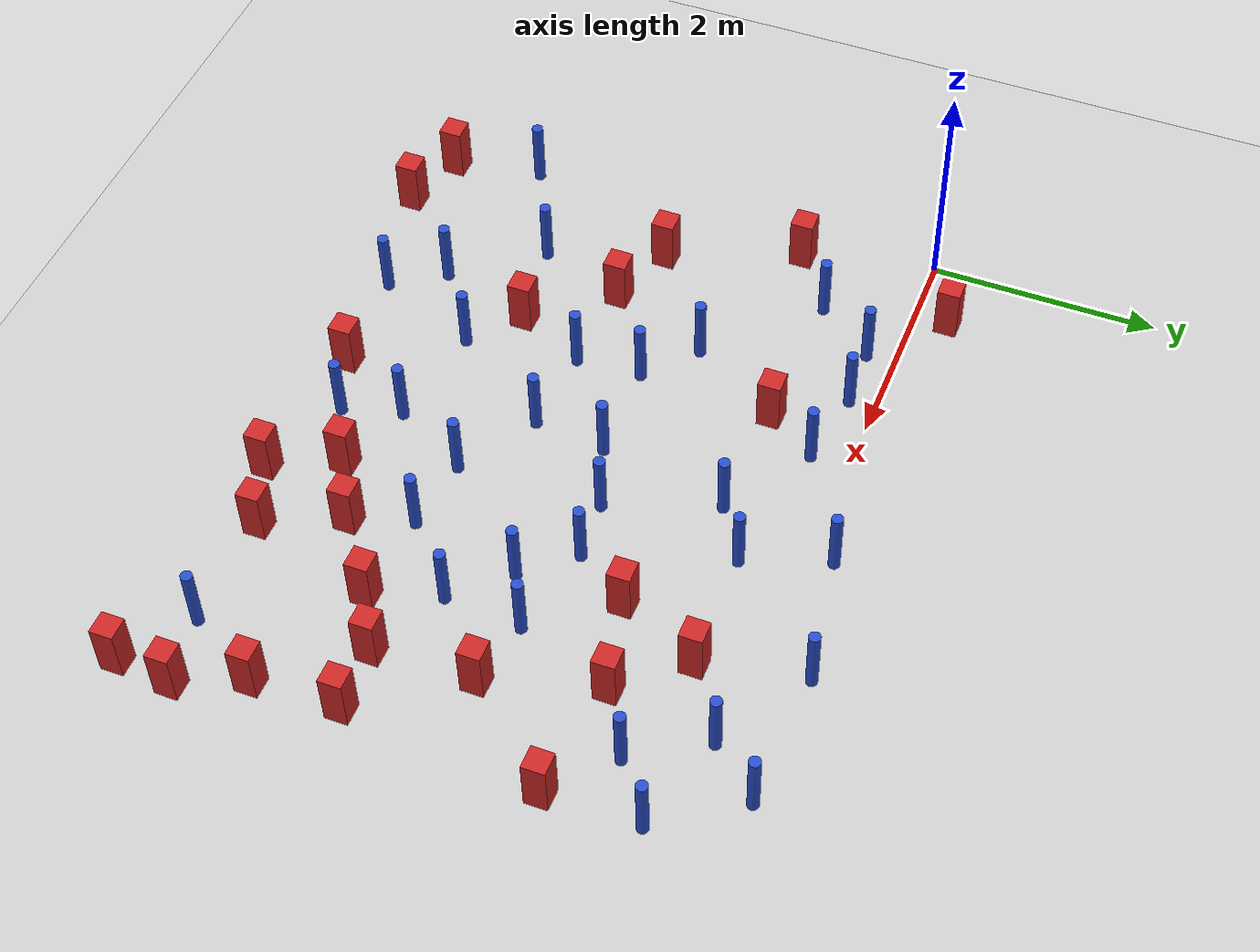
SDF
<sdf version="1.6">
 <world name="default">
  <model name="ground_plane">
   <static>1</static>
   <link name="link">
    <collision name="collision">
     <geometry><plane><normal>0 0 1</normal><size>100 100</size></plane></geometry>
     <surface><friction><ode><mu>100</mu><mu2>50</mu2></ode></friction></surface>
    </collision>
    <visual name="visual">
     <cast_shadows>0</cast_shadows>
     <geometry><plane><normal>0 0 1</normal><size>100 100</size></plane></geometry>
     <material>
      <ambient>1.0 1.0 1.0 1.0</ambient>
      <diffuse>0.8 0.8 0.8 1.0</diffuse>
      <specular>0.01 0.01 0.01 1.000000</specular>
     </material>
    </visual>
   </link>
  </model>
  <model name="square_post_obstacle2">
   <static>true</static>
   <pose>1.87712716383 -3.18212368391 1.91545236811e-07 -7.35059704564e-06 1.12565212e-07 2.39332434364e-05</pose>
   <link name="link">
    <pose>0 0 0.25 0 -0 0</pose>
    <inertial>
     <mass>100</mass>
     <inertia>
      <ixx>0.166667</ixx>
      <ixy>0</ixy>
      <ixz>0</ixz>
      <iyy>0.166667</iyy>
      <iyz>0</iyz>
      <izz>0.166667</izz>
     </inertia>
    </inertial>
    <collision name="collision"><geometry><box><size>.2 .2 .5</size></box></geometry></collision>
    <visual name="visual">
     <geometry><box><size>.2 .2 .5</size></box></geometry>
     <material>
      <script><name>Gazebo/Red</name><uri>file://media/materials/scripts/gazebo.material</uri></script>
     </material>
    </visual>
   </link>
  </model>
  <model name="square_post_obstacle13">
   <static>true</static>
   <pose>0.290490334765 -1.14874622787 1.91545236811e-07 -7.35059704564e-06 1.12565212e-07 2.39332434364e-05</pose>
   <link name="link">
    <pose>0 0 0.25 0 -0 0</pose>
    <inertial>
     <mass>100</mass>
     <inertia>
      <ixx>0.166667</ixx>
      <ixy>0</ixy>
      <ixz>0</ixz>
      <iyy>0.166667</iyy>
      <iyz>0</iyz>
      <izz>0.166667</izz>
     </inertia>
    </inertial>
    <collision name="collision"><geometry><box><size>.2 .2 .5</size></box></geometry></collision>
    <visual name="visual">
     <geometry><box><size>.2 .2 .5</size></box></geometry>
     <material>
      <script><name>Gazebo/Red</name><uri>file://media/materials/scripts/gazebo.material</uri></script>
     </material>
    </visual>
   </link>
  </model>
  <model name="square_post_obstacle22">
   <static>true</static>
   <pose>2.86994358038 -4.40634051251 1.91545236811e-07 -7.35059704564e-06 1.12565212e-07 2.39332434364e-05</pose>
   <link name="link">
    <pose>0 0 0.25 0 -0 0</pose>
    <inertial>
     <mass>100</mass>
     <inertia>
      <ixx>0.166667</ixx>
      <ixy>0</ixy>
      <ixz>0</ixz>
      <iyy>0.166667</iyy>
      <iyz>0</iyz>
      <izz>0.166667</izz>
     </inertia>
    </inertial>
    <collision name="collision"><geometry><box><size>.2 .2 .5</size></box></geometry></collision>
    <visual name="visual">
     <geometry><box><size>.2 .2 .5</size></box></geometry>
     <material>
      <script><name>Gazebo/Red</name><uri>file://media/materials/scripts/gazebo.material</uri></script>
     </material>
    </visual>
   </link>
  </model>
  <model name="square_post_obstacle28">
   <static>true</static>
   <pose>4.43367422833 -1.22863578563 1.91545236811e-07 -7.35059704564e-06 1.12565212e-07 2.39332434364e-05</pose>
   <link name="link">
    <pose>0 0 0.25 0 -0 0</pose>
    <inertial>
     <mass>100</mass>
     <inertia>
      <ixx>0.166667</ixx>
      <ixy>0</ixy>
      <ixz>0</ixz>
      <iyy>0.166667</iyy>
      <iyz>0</iyz>
      <izz>0.166667</izz>
     </inertia>
    </inertial>
    <collision name="collision"><geometry><box><size>.2 .2 .5</size></box></geometry></collision>
    <visual name="visual">
     <geometry><box><size>.2 .2 .5</size></box></geometry>
     <material>
      <script><name>Gazebo/Red</name><uri>file://media/materials/scripts/gazebo.material</uri></script>
     </material>
    </visual>
   </link>
  </model>
  <model name="square_post_obstacle29">
   <static>true</static>
   <pose>6.26811032753 -1.15741085906 1.91545236811e-07 -7.35059704564e-06 1.12565212e-07 2.39332434364e-05</pose>
   <link name="link">
    <pose>0 0 0.25 0 -0 0</pose>
    <inertial>
     <mass>100</mass>
     <inertia>
      <ixx>0.166667</ixx>
      <ixy>0</ixy>
      <ixz>0</ixz>
      <iyy>0.166667</iyy>
      <iyz>0</iyz>
      <izz>0.166667</izz>
     </inertia>
    </inertial>
    <collision name="collision"><geometry><box><size>.2 .2 .5</size></box></geometry></collision>
    <visual name="visual">
     <geometry><box><size>.2 .2 .5</size></box></geometry>
     <material>
      <script><name>Gazebo/Red</name><uri>file://media/materials/scripts/gazebo.material</uri></script>
     </material>
    </visual>
   </link>
  </model>
  <model name="pole_obstacle29">
   <static>true</static>
   <pose>3.70226372074 -0.526272472891 7.38925637345e-09 -8.471706928e-08 1.24976765186e-08 -1.74513093012e-07</pose>
   <link name="link">
    <pose>0 0 0.3 0 -0 0</pose>
    <inertial>
     <mass>1</mass>
     <inertia><ixx>0.145833</ixx><ixy>0</ixy><ixz>0</ixz><iyy>0.145833</iyy><iyz>0</iyz><izz>0.125</izz></inertia>
    </inertial>
    <collision name="collision">
     <geometry><cylinder><radius>0.05</radius><length>.6</length></cylinder></geometry>
    </collision>
    <visual name="visual">
     <geometry><cylinder><radius>0.05</radius><length>.6</length></cylinder></geometry>
     <material>
      <script><name>Gazebo/Blue</name><uri>file://media/materials/scripts/gazebo.material</uri></script>
     </material>
    </visual>
   </link>
  </model>
  <model name="square_post_obstacle35">
   <static>true</static>
   <pose>6.12166422069 -2.87649692162 1.91545236811e-07 -7.35059704564e-06 1.12565212e-07 2.39332434364e-05</pose>
   <link name="link">
    <pose>0 0 0.25 0 -0 0</pose>
    <inertial>
     <mass>100</mass>
     <inertia>
      <ixx>0.166667</ixx>
      <ixy>0</ixy>
      <ixz>0</ixz>
      <iyy>0.166667</iyy>
      <iyz>0</iyz>
      <izz>0.166667</izz>
     </inertia>
    </inertial>
    <collision name="collision"><geometry><box><size>.2 .2 .5</size></box></geometry></collision>
    <visual name="visual">
     <geometry><box><size>.2 .2 .5</size></box></geometry>
     <material>
      <script><name>Gazebo/Red</name><uri>file://media/materials/scripts/gazebo.material</uri></script>
     </material>
    </visual>
   </link>
  </model>
  <model name="pole_obstacle34">
   <static>true</static>
   <pose>2.29608272024 -3.55717359873 7.38925637345e-09 -8.47170692798e-08 1.24976764939e-08 -1.74513093025e-07</pose>
   <link name="link">
    <pose>0 0 0.3 0 -0 0</pose>
    <inertial>
     <mass>1</mass>
     <inertia><ixx>0.145833</ixx><ixy>0</ixy><ixz>0</ixz><iyy>0.145833</iyy><iyz>0</iyz><izz>0.125</izz></inertia>
    </inertial>
    <collision name="collision">
     <geometry><cylinder><radius>0.05</radius><length>.6</length></cylinder></geometry>
    </collision>
    <visual name="visual">
     <geometry><cylinder><radius>0.05</radius><length>.6</length></cylinder></geometry>
     <material>
      <script><name>Gazebo/Blue</name><uri>file://media/materials/scripts/gazebo.material</uri></script>
     </material>
    </visual>
   </link>
  </model>
  <model name="square_post_obstacle37">
   <static>true</static>
   <pose>5.55675360045 -2.89490780846 1.91545236811e-07 -7.35059704564e-06 1.12565212e-07 2.39332434364e-05</pose>
   <link name="link">
    <pose>0 0 0.25 0 -0 0</pose>
    <inertial>
     <mass>100</mass>
     <inertia>
      <ixx>0.166667</ixx>
      <ixy>0</ixy>
      <ixz>0</ixz>
      <iyy>0.166667</iyy>
      <iyz>0</iyz>
      <izz>0.166667</izz>
     </inertia>
    </inertial>
    <collision name="collision"><geometry><box><size>.2 .2 .5</size></box></geometry></collision>
    <visual name="visual">
     <geometry><box><size>.2 .2 .5</size></box></geometry>
     <material>
      <script><name>Gazebo/Red</name><uri>file://media/materials/scripts/gazebo.material</uri></script>
     </material>
    </visual>
   </link>
  </model>
  <model name="pole_obstacle42">
   <static>true</static>
   <pose>4.57937662705 0.396037014761 7.38925637345e-09 -8.47170692798e-08 1.24976765003e-08 -1.7451309302e-07</pose>
   <link name="link">
    <pose>0 0 0.3 0 -0 0</pose>
    <inertial>
     <mass>1</mass>
     <inertia><ixx>0.145833</ixx><ixy>0</ixy><ixz>0</ixz><iyy>0.145833</iyy><iyz>0</iyz><izz>0.125</izz></inertia>
    </inertial>
    <collision name="collision">
     <geometry><cylinder><radius>0.05</radius><length>.6</length></cylinder></geometry>
    </collision>
    <visual name="visual">
     <geometry><cylinder><radius>0.05</radius><length>.6</length></cylinder></geometry>
     <material>
      <script><name>Gazebo/Blue</name><uri>file://media/materials/scripts/gazebo.material</uri></script>
     </material>
    </visual>
   </link>
  </model>
  <model name="square_post_obstacle46">
   <static>true</static>
   <pose>4.75599143377 -4.29013870472 1.91545236811e-07 -7.35059704564e-06 1.12565212e-07 2.39332434364e-05</pose>
   <link name="link">
    <pose>0 0 0.25 0 -0 0</pose>
    <inertial>
     <mass>100</mass>
     <inertia>
      <ixx>0.166667</ixx>
      <ixy>0</ixy>
      <ixz>0</ixz>
      <iyy>0.166667</iyy>
      <iyz>0</iyz>
      <izz>0.166667</izz>
     </inertia>
    </inertial>
    <collision name="collision"><geometry><box><size>.2 .2 .5</size></box></geometry></collision>
    <visual name="visual">
     <geometry><box><size>.2 .2 .5</size></box></geometry>
     <material>
      <script><name>Gazebo/Red</name><uri>file://media/materials/scripts/gazebo.material</uri></script>
     </material>
    </visual>
   </link>
  </model>
  <model name="square_post_obstacle47">
   <static>true</static>
   <pose>3.91105022048 -3.93036973854 1.91545236811e-07 -7.35059704564e-06 1.12565212e-07 2.39332434364e-05</pose>
   <link name="link">
    <pose>0 0 0.25 0 -0 0</pose>
    <inertial>
     <mass>100</mass>
     <inertia>
      <ixx>0.166667</ixx>
      <ixy>0</ixy>
      <ixz>0</ixz>
      <iyy>0.166667</iyy>
      <iyz>0</iyz>
      <izz>0.166667</izz>
     </inertia>
    </inertial>
    <collision name="collision"><geometry><box><size>.2 .2 .5</size></box></geometry></collision>
    <visual name="visual">
     <geometry><box><size>.2 .2 .5</size></box></geometry>
     <material>
      <script><name>Gazebo/Red</name><uri>file://media/materials/scripts/gazebo.material</uri></script>
     </material>
    </visual>
   </link>
  </model>
  <model name="square_post_obstacle52">
   <static>true</static>
   <pose>0.625016838886 0.302436165208 1.91545236811e-07 -7.35059704564e-06 1.12565212e-07 2.39332434364e-05</pose>
   <link name="link">
    <pose>0 0 0.25 0 -0 0</pose>
    <inertial>
     <mass>100</mass>
     <inertia>
      <ixx>0.166667</ixx>
      <ixy>0</ixy>
      <ixz>0</ixz>
      <iyy>0.166667</iyy>
      <iyz>0</iyz>
      <izz>0.166667</izz>
     </inertia>
    </inertial>
    <collision name="collision"><geometry><box><size>.2 .2 .5</size></box></geometry></collision>
    <visual name="visual">
     <geometry><box><size>.2 .2 .5</size></box></geometry>
     <material>
      <script><name>Gazebo/Red</name><uri>file://media/materials/scripts/gazebo.material</uri></script>
     </material>
    </visual>
   </link>
  </model>
  <model name="square_post_obstacle54">
   <static>true</static>
   <pose>0.304550579448 -4.54418312498 1.91545236811e-07 -7.35059704564e-06 1.12565212e-07 2.39332434364e-05</pose>
   <link name="link">
    <pose>0 0 0.25 0 -0 0</pose>
    <inertial>
     <mass>100</mass>
     <inertia>
      <ixx>0.166667</ixx>
      <ixy>0</ixy>
      <ixz>0</ixz>
      <iyy>0.166667</iyy>
      <iyz>0</iyz>
      <izz>0.166667</izz>
     </inertia>
    </inertial>
    <collision name="collision"><geometry><box><size>.2 .2 .5</size></box></geometry></collision>
    <visual name="visual">
     <geometry><box><size>.2 .2 .5</size></box></geometry>
     <material>
      <script><name>Gazebo/Red</name><uri>file://media/materials/scripts/gazebo.material</uri></script>
     </material>
    </visual>
   </link>
  </model>
  <model name="pole_obstacle52">
   <static>true</static>
   <pose>1.92592263303 -4.47850037943 7.38925637345e-09 -8.47170692799e-08 1.24976765033e-08 -1.74513093018e-07</pose>
   <link name="link">
    <pose>0 0 0.3 0 -0 0</pose>
    <inertial>
     <mass>1</mass>
     <inertia><ixx>0.145833</ixx><ixy>0</ixy><ixz>0</ixz><iyy>0.145833</iyy><iyz>0</iyz><izz>0.125</izz></inertia>
    </inertial>
    <collision name="collision">
     <geometry><cylinder><radius>0.05</radius><length>.6</length></cylinder></geometry>
    </collision>
    <visual name="visual">
     <geometry><cylinder><radius>0.05</radius><length>.6</length></cylinder></geometry>
     <material>
      <script><name>Gazebo/Blue</name><uri>file://media/materials/scripts/gazebo.material</uri></script>
     </material>
    </visual>
   </link>
  </model>
  <model name="square_post_obstacle57">
   <static>true</static>
   <pose>0.732037611838 -2.29606073342 1.91545236811e-07 -7.35059704564e-06 1.12565212e-07 2.39332434364e-05</pose>
   <link name="link">
    <pose>0 0 0.25 0 -0 0</pose>
    <inertial>
     <mass>100</mass>
     <inertia>
      <ixx>0.166667</ixx>
      <ixy>0</ixy>
      <ixz>0</ixz>
      <iyy>0.166667</iyy>
      <iyz>0</iyz>
      <izz>0.166667</izz>
     </inertia>
    </inertial>
    <collision name="collision"><geometry><box><size>.2 .2 .5</size></box></geometry></collision>
    <visual name="visual">
     <geometry><box><size>.2 .2 .5</size></box></geometry>
     <material>
      <script><name>Gazebo/Red</name><uri>file://media/materials/scripts/gazebo.material</uri></script>
     </material>
    </visual>
   </link>
  </model>
  <model name="pole_obstacle56">
   <static>true</static>
   <pose>2.9387800708 -2.61939094975 7.38925637345e-09 -8.47170692798e-08 1.24976764939e-08 -1.74513093025e-07</pose>
   <link name="link">
    <pose>0 0 0.3 0 -0 0</pose>
    <inertial>
     <mass>1</mass>
     <inertia><ixx>0.145833</ixx><ixy>0</ixy><ixz>0</ixz><iyy>0.145833</iyy><iyz>0</iyz><izz>0.125</izz></inertia>
    </inertial>
    <collision name="collision">
     <geometry><cylinder><radius>0.05</radius><length>.6</length></cylinder></geometry>
    </collision>
    <visual name="visual">
     <geometry><cylinder><radius>0.05</radius><length>.6</length></cylinder></geometry>
     <material>
      <script><name>Gazebo/Blue</name><uri>file://media/materials/scripts/gazebo.material</uri></script>
     </material>
    </visual>
   </link>
  </model>
  <model name="pole_obstacle60">
   <static>true</static>
   <pose>5.76372513387 -4.30937177448 7.38925637345e-09 -8.47170692796e-08 1.24976764786e-08 -1.74513093032e-07</pose>
   <link name="link">
    <pose>0 0 0.3 0 -0 0</pose>
    <inertial>
     <mass>1</mass>
     <inertia><ixx>0.145833</ixx><ixy>0</ixy><ixz>0</ixz><iyy>0.145833</iyy><iyz>0</iyz><izz>0.125</izz></inertia>
    </inertial>
    <collision name="collision">
     <geometry><cylinder><radius>0.05</radius><length>.6</length></cylinder></geometry>
    </collision>
    <visual name="visual">
     <geometry><cylinder><radius>0.05</radius><length>.6</length></cylinder></geometry>
     <material>
      <script><name>Gazebo/Blue</name><uri>file://media/materials/scripts/gazebo.material</uri></script>
     </material>
    </visual>
   </link>
  </model>
  <model name="pole_obstacle66">
   <static>true</static>
   <pose>6.25325592122 -0.34724285604 7.38925637345e-09 -8.47170692798e-08 1.24976765003e-08 -1.7451309302e-07</pose>
   <link name="link">
    <pose>0 0 0.3 0 -0 0</pose>
    <inertial>
     <mass>1</mass>
     <inertia><ixx>0.145833</ixx><ixy>0</ixy><ixz>0</ixz><iyy>0.145833</iyy><iyz>0</iyz><izz>0.125</izz></inertia>
    </inertial>
    <collision name="collision">
     <geometry><cylinder><radius>0.05</radius><length>.6</length></cylinder></geometry>
    </collision>
    <visual name="visual">
     <geometry><cylinder><radius>0.05</radius><length>.6</length></cylinder></geometry>
     <material>
      <script><name>Gazebo/Blue</name><uri>file://media/materials/scripts/gazebo.material</uri></script>
     </material>
    </visual>
   </link>
  </model>
  <model name="pole_obstacle69">
   <static>true</static>
   <pose>0.831735934486 -0.770391821955 7.38925637345e-09 -8.47170692799e-08 1.24976765008e-08 -1.7451309302e-07</pose>
   <link name="link">
    <pose>0 0 0.3 0 -0 0</pose>
    <inertial>
     <mass>1</mass>
     <inertia><ixx>0.145833</ixx><ixy>0</ixy><ixz>0</ixz><iyy>0.145833</iyy><iyz>0</iyz><izz>0.125</izz></inertia>
    </inertial>
    <collision name="collision">
     <geometry><cylinder><radius>0.05</radius><length>.6</length></cylinder></geometry>
    </collision>
    <visual name="visual">
     <geometry><cylinder><radius>0.05</radius><length>.6</length></cylinder></geometry>
     <material>
      <script><name>Gazebo/Blue</name><uri>file://media/materials/scripts/gazebo.material</uri></script>
     </material>
    </visual>
   </link>
  </model>
  <model name="pole_obstacle77">
   <static>true</static>
   <pose>4.87543184126 -2.57974493593 7.38925637345e-09 -8.47170692798e-08 1.24976764937e-08 -1.74513093023e-07</pose>
   <link name="link">
    <pose>0 0 0.3 0 -0 0</pose>
    <inertial>
     <mass>1</mass>
     <inertia><ixx>0.145833</ixx><ixy>0</ixy><ixz>0</ixz><iyy>0.145833</iyy><iyz>0</iyz><izz>0.125</izz></inertia>
    </inertial>
    <collision name="collision">
     <geometry><cylinder><radius>0.05</radius><length>.6</length></cylinder></geometry>
    </collision>
    <visual name="visual">
     <geometry><cylinder><radius>0.05</radius><length>.6</length></cylinder></geometry>
     <material>
      <script><name>Gazebo/Blue</name><uri>file://media/materials/scripts/gazebo.material</uri></script>
     </material>
    </visual>
   </link>
  </model>
  <model name="square_post_obstacle79">
   <static>true</static>
   <pose>6.38502125943 -4.20020715803 1.91545236811e-07 -7.35059704564e-06 1.12565212e-07 2.39332434364e-05</pose>
   <link name="link">
    <pose>0 0 0.25 0 -0 0</pose>
    <inertial>
     <mass>100</mass>
     <inertia>
      <ixx>0.166667</ixx>
      <ixy>0</ixy>
      <ixz>0</ixz>
      <iyy>0.166667</iyy>
      <iyz>0</iyz>
      <izz>0.166667</izz>
     </inertia>
    </inertial>
    <collision name="collision"><geometry><box><size>.2 .2 .5</size></box></geometry></collision>
    <visual name="visual">
     <geometry><box><size>.2 .2 .5</size></box></geometry>
     <material>
      <script><name>Gazebo/Red</name><uri>file://media/materials/scripts/gazebo.material</uri></script>
     </material>
    </visual>
   </link>
  </model>
  <model name="pole_obstacle81">
   <static>true</static>
   <pose>5.38440537211 -0.0988801034989 7.38925637345e-09 -8.47170692799e-08 1.24976765039e-08 -1.74513093019e-07</pose>
   <link name="link">
    <pose>0 0 0.3 0 -0 0</pose>
    <inertial>
     <mass>1</mass>
     <inertia><ixx>0.145833</ixx><ixy>0</ixy><ixz>0</ixz><iyy>0.145833</iyy><iyz>0</iyz><izz>0.125</izz></inertia>
    </inertial>
    <collision name="collision">
     <geometry><cylinder><radius>0.05</radius><length>.6</length></cylinder></geometry>
    </collision>
    <visual name="visual">
     <geometry><cylinder><radius>0.05</radius><length>.6</length></cylinder></geometry>
     <material>
      <script><name>Gazebo/Blue</name><uri>file://media/materials/scripts/gazebo.material</uri></script>
     </material>
    </visual>
   </link>
  </model>
  <model name="square_post_obstacle81">
   <static>true</static>
   <pose>5.52212290222 -2.01168719149 1.91545236811e-07 -7.35059704564e-06 1.12565212e-07 2.39332434364e-05</pose>
   <link name="link">
    <pose>0 0 0.25 0 -0 0</pose>
    <inertial>
     <mass>100</mass>
     <inertia>
      <ixx>0.166667</ixx>
      <ixy>0</ixy>
      <ixz>0</ixz>
      <iyy>0.166667</iyy>
      <iyz>0</iyz>
      <izz>0.166667</izz>
     </inertia>
    </inertial>
    <collision name="collision"><geometry><box><size>.2 .2 .5</size></box></geometry></collision>
    <visual name="visual">
     <geometry><box><size>.2 .2 .5</size></box></geometry>
     <material>
      <script><name>Gazebo/Red</name><uri>file://media/materials/scripts/gazebo.material</uri></script>
     </material>
    </visual>
   </link>
  </model>
  <model name="pole_obstacle88">
   <static>true</static>
   <pose>3.25016630791 -3.71055194684 7.38925637345e-09 -8.47170692798e-08 1.24976764939e-08 -1.74513093025e-07</pose>
   <link name="link">
    <pose>0 0 0.3 0 -0 0</pose>
    <inertial>
     <mass>1</mass>
     <inertia><ixx>0.145833</ixx><ixy>0</ixy><ixz>0</ixz><iyy>0.145833</iyy><iyz>0</iyz><izz>0.125</izz></inertia>
    </inertial>
    <collision name="collision">
     <geometry><cylinder><radius>0.05</radius><length>.6</length></cylinder></geometry>
    </collision>
    <visual name="visual">
     <geometry><cylinder><radius>0.05</radius><length>.6</length></cylinder></geometry>
     <material>
      <script><name>Gazebo/Blue</name><uri>file://media/materials/scripts/gazebo.material</uri></script>
     </material>
    </visual>
   </link>
  </model>
  <model name="pole_obstacle90">
   <static>true</static>
   <pose>3.01265767654 -1.9756026013 7.38925637345e-09 -8.471706928e-08 1.249767651e-08 -1.74513093015e-07</pose>
   <link name="link">
    <pose>0 0 0.3 0 -0 0</pose>
    <inertial>
     <mass>1</mass>
     <inertia><ixx>0.145833</ixx><ixy>0</ixy><ixz>0</ixz><iyy>0.145833</iyy><iyz>0</iyz><izz>0.125</izz></inertia>
    </inertial>
    <collision name="collision">
     <geometry><cylinder><radius>0.05</radius><length>.6</length></cylinder></geometry>
    </collision>
    <visual name="visual">
     <geometry><cylinder><radius>0.05</radius><length>.6</length></cylinder></geometry>
     <material>
      <script><name>Gazebo/Blue</name><uri>file://media/materials/scripts/gazebo.material</uri></script>
     </material>
    </visual>
   </link>
  </model>
  <model name="pole_obstacle93">
   <static>true</static>
   <pose>3.22915781412 -0.827715417031 7.38925637345e-09 -8.471706928e-08 1.24976765177e-08 -1.74513093012e-07</pose>
   <link name="link">
    <pose>0 0 0.3 0 -0 0</pose>
    <inertial>
     <mass>1</mass>
     <inertia><ixx>0.145833</ixx><ixy>0</ixy><ixz>0</ixz><iyy>0.145833</iyy><iyz>0</iyz><izz>0.125</izz></inertia>
    </inertial>
    <collision name="collision">
     <geometry><cylinder><radius>0.05</radius><length>.6</length></cylinder></geometry>
    </collision>
    <visual name="visual">
     <geometry><cylinder><radius>0.05</radius><length>.6</length></cylinder></geometry>
     <material>
      <script><name>Gazebo/Blue</name><uri>file://media/materials/scripts/gazebo.material</uri></script>
     </material>
    </visual>
   </link>
  </model>
  <model name="pole_obstacle101">
   <static>true</static>
   <pose>2.4618221212 -0.334692349725 7.38925637345e-09 -8.471706928e-08 1.24976765172e-08 -1.74513093013e-07</pose>
   <link name="link">
    <pose>0 0 0.3 0 -0 0</pose>
    <inertial>
     <mass>1</mass>
     <inertia><ixx>0.145833</ixx><ixy>0</ixy><ixz>0</ixz><iyy>0.145833</iyy><iyz>0</iyz><izz>0.125</izz></inertia>
    </inertial>
    <collision name="collision">
     <geometry><cylinder><radius>0.05</radius><length>.6</length></cylinder></geometry>
    </collision>
    <visual name="visual">
     <geometry><cylinder><radius>0.05</radius><length>.6</length></cylinder></geometry>
     <material>
      <script><name>Gazebo/Blue</name><uri>file://media/materials/scripts/gazebo.material</uri></script>
     </material>
    </visual>
   </link>
  </model>
  <model name="pole_obstacle109">
   <static>true</static>
   <pose>2.16136557472 -2.56848561285 7.38925637345e-09 -8.47170692798e-08 1.24976764939e-08 -1.74513093025e-07</pose>
   <link name="link">
    <pose>0 0 0.3 0 -0 0</pose>
    <inertial>
     <mass>1</mass>
     <inertia><ixx>0.145833</ixx><ixy>0</ixy><ixz>0</ixz><iyy>0.145833</iyy><iyz>0</iyz><izz>0.125</izz></inertia>
    </inertial>
    <collision name="collision">
     <geometry><cylinder><radius>0.05</radius><length>.6</length></cylinder></geometry>
    </collision>
    <visual name="visual">
     <geometry><cylinder><radius>0.05</radius><length>.6</length></cylinder></geometry>
     <material>
      <script><name>Gazebo/Blue</name><uri>file://media/materials/scripts/gazebo.material</uri></script>
     </material>
    </visual>
   </link>
  </model>
  <model name="square_post_obstacle110">
   <static>true</static>
   <pose>5.07274384306 -3.17413740049 1.91545236811e-07 -7.35059704564e-06 1.12565212e-07 2.39332434364e-05</pose>
   <link name="link">
    <pose>0 0 0.25 0 -0 0</pose>
    <inertial>
     <mass>100</mass>
     <inertia>
      <ixx>0.166667</ixx>
      <ixy>0</ixy>
      <ixz>0</ixz>
      <iyy>0.166667</iyy>
      <iyz>0</iyz>
      <izz>0.166667</izz>
     </inertia>
    </inertial>
    <collision name="collision"><geometry><box><size>.2 .2 .5</size></box></geometry></collision>
    <visual name="visual">
     <geometry><box><size>.2 .2 .5</size></box></geometry>
     <material>
      <script><name>Gazebo/Red</name><uri>file://media/materials/scripts/gazebo.material</uri></script>
     </material>
    </visual>
   </link>
  </model>
  <model name="square_post_obstacle111">
   <static>true</static>
   <pose>4.76953723247 -0.500163490495 1.91545236811e-07 -7.35059704564e-06 1.12565212e-07 2.39332434364e-05</pose>
   <link name="link">
    <pose>0 0 0.25 0 -0 0</pose>
    <inertial>
     <mass>100</mass>
     <inertia>
      <ixx>0.166667</ixx>
      <ixy>0</ixy>
      <ixz>0</ixz>
      <iyy>0.166667</iyy>
      <iyz>0</iyz>
      <izz>0.166667</izz>
     </inertia>
    </inertial>
    <collision name="collision"><geometry><box><size>.2 .2 .5</size></box></geometry></collision>
    <visual name="visual">
     <geometry><box><size>.2 .2 .5</size></box></geometry>
     <material>
      <script><name>Gazebo/Red</name><uri>file://media/materials/scripts/gazebo.material</uri></script>
     </material>
    </visual>
   </link>
  </model>
  <model name="pole_obstacle122">
   <static>true</static>
   <pose>5.76492341704 -0.714240533339 7.38925637345e-09 -8.47170692799e-08 1.24976765038e-08 -1.74513093018e-07</pose>
   <link name="link">
    <pose>0 0 0.3 0 -0 0</pose>
    <inertial>
     <mass>1</mass>
     <inertia><ixx>0.145833</ixx><ixy>0</ixy><ixz>0</ixz><iyy>0.145833</iyy><iyz>0</iyz><izz>0.125</izz></inertia>
    </inertial>
    <collision name="collision">
     <geometry><cylinder><radius>0.05</radius><length>.6</length></cylinder></geometry>
    </collision>
    <visual name="visual">
     <geometry><cylinder><radius>0.05</radius><length>.6</length></cylinder></geometry>
     <material>
      <script><name>Gazebo/Blue</name><uri>file://media/materials/scripts/gazebo.material</uri></script>
     </material>
    </visual>
   </link>
  </model>
  <model name="pole_obstacle124">
   <static>true</static>
   <pose>4.10232915058 -1.72885497547 7.38925637345e-09 -8.471706928e-08 1.24976765134e-08 -1.74513093015e-07</pose>
   <link name="link">
    <pose>0 0 0.3 0 -0 0</pose>
    <inertial>
     <mass>1</mass>
     <inertia><ixx>0.145833</ixx><ixy>0</ixy><ixz>0</ixz><iyy>0.145833</iyy><iyz>0</iyz><izz>0.125</izz></inertia>
    </inertial>
    <collision name="collision">
     <geometry><cylinder><radius>0.05</radius><length>.6</length></cylinder></geometry>
    </collision>
    <visual name="visual">
     <geometry><cylinder><radius>0.05</radius><length>.6</length></cylinder></geometry>
     <material>
      <script><name>Gazebo/Blue</name><uri>file://media/materials/scripts/gazebo.material</uri></script>
     </material>
    </visual>
   </link>
  </model>
  <model name="pole_obstacle127">
   <static>true</static>
   <pose>0.149685162404 -3.77438365638 7.38925637345e-09 -8.47170692792e-08 1.24976764391e-08 -1.74513093041e-07</pose>
   <link name="link">
    <pose>0 0 0.3 0 -0 0</pose>
    <inertial>
     <mass>1</mass>
     <inertia><ixx>0.145833</ixx><ixy>0</ixy><ixz>0</ixz><iyy>0.145833</iyy><iyz>0</iyz><izz>0.125</izz></inertia>
    </inertial>
    <collision name="collision">
     <geometry><cylinder><radius>0.05</radius><length>.6</length></cylinder></geometry>
    </collision>
    <visual name="visual">
     <geometry><cylinder><radius>0.05</radius><length>.6</length></cylinder></geometry>
     <material>
      <script><name>Gazebo/Blue</name><uri>file://media/materials/scripts/gazebo.material</uri></script>
     </material>
    </visual>
   </link>
  </model>
  <model name="square_post_obstacle124">
   <static>true</static>
   <pose>2.16885192007 -0.789678213845 1.91545236811e-07 -7.35059704564e-06 1.12565212e-07 2.39332434364e-05</pose>
   <link name="link">
    <pose>0 0 0.25 0 -0 0</pose>
    <inertial>
     <mass>100</mass>
     <inertia>
      <ixx>0.166667</ixx>
      <ixy>0</ixy>
      <ixz>0</ixz>
      <iyy>0.166667</iyy>
      <iyz>0</iyz>
      <izz>0.166667</izz>
     </inertia>
    </inertial>
    <collision name="collision"><geometry><box><size>.2 .2 .5</size></box></geometry></collision>
    <visual name="visual">
     <geometry><box><size>.2 .2 .5</size></box></geometry>
     <material>
      <script><name>Gazebo/Red</name><uri>file://media/materials/scripts/gazebo.material</uri></script>
     </material>
    </visual>
   </link>
  </model>
  <model name="pole_obstacle147">
   <static>true</static>
   <pose>3.39150870754 -4.22245238628 7.38925637345e-09 -8.47170692798e-08 1.24976765033e-08 -1.74513093019e-07</pose>
   <link name="link">
    <pose>0 0 0.3 0 -0 0</pose>
    <inertial>
     <mass>1</mass>
     <inertia><ixx>0.145833</ixx><ixy>0</ixy><ixz>0</ixz><iyy>0.145833</iyy><iyz>0</iyz><izz>0.125</izz></inertia>
    </inertial>
    <collision name="collision">
     <geometry><cylinder><radius>0.05</radius><length>.6</length></cylinder></geometry>
    </collision>
    <visual name="visual">
     <geometry><cylinder><radius>0.05</radius><length>.6</length></cylinder></geometry>
     <material>
      <script><name>Gazebo/Blue</name><uri>file://media/materials/scripts/gazebo.material</uri></script>
     </material>
    </visual>
   </link>
  </model>
  <model name="pole_obstacle149">
   <static>true</static>
   <pose>3.44697491963 0.199917072669 7.38925637345e-09 -8.47170692801e-08 1.24976765195e-08 -1.74513093011e-07</pose>
   <link name="link">
    <pose>0 0 0.3 0 -0 0</pose>
    <inertial>
     <mass>1</mass>
     <inertia><ixx>0.145833</ixx><ixy>0</ixy><ixz>0</ixz><iyy>0.145833</iyy><iyz>0</iyz><izz>0.125</izz></inertia>
    </inertial>
    <collision name="collision">
     <geometry><cylinder><radius>0.05</radius><length>.6</length></cylinder></geometry>
    </collision>
    <visual name="visual">
     <geometry><cylinder><radius>0.05</radius><length>.6</length></cylinder></geometry>
     <material>
      <script><name>Gazebo/Blue</name><uri>file://media/materials/scripts/gazebo.material</uri></script>
     </material>
    </visual>
   </link>
  </model>
  <model name="square_post_obstacle141">
   <static>true</static>
   <pose>6.33466238675 -4.70073298205 1.91545236811e-07 -7.35059704564e-06 1.12565212e-07 2.39332434364e-05</pose>
   <link name="link">
    <pose>0 0 0.25 0 -0 0</pose>
    <inertial>
     <mass>100</mass>
     <inertia>
      <ixx>0.166667</ixx>
      <ixy>0</ixy>
      <ixz>0</ixz>
      <iyy>0.166667</iyy>
      <iyz>0</iyz>
      <izz>0.166667</izz>
     </inertia>
    </inertial>
    <collision name="collision"><geometry><box><size>.2 .2 .5</size></box></geometry></collision>
    <visual name="visual">
     <geometry><box><size>.2 .2 .5</size></box></geometry>
     <material>
      <script><name>Gazebo/Red</name><uri>file://media/materials/scripts/gazebo.material</uri></script>
     </material>
    </visual>
   </link>
  </model>
  <model name="square_post_obstacle142">
   <static>true</static>
   <pose>4.18207670534 -4.51881926372 1.91545236811e-07 -7.35059704564e-06 1.12565212e-07 2.39332434364e-05</pose>
   <link name="link">
    <pose>0 0 0.25 0 -0 0</pose>
    <inertial>
     <mass>100</mass>
     <inertia>
      <ixx>0.166667</ixx>
      <ixy>0</ixy>
      <ixz>0</ixz>
      <iyy>0.166667</iyy>
      <iyz>0</iyz>
      <izz>0.166667</izz>
     </inertia>
    </inertial>
    <collision name="collision"><geometry><box><size>.2 .2 .5</size></box></geometry></collision>
    <visual name="visual">
     <geometry><box><size>.2 .2 .5</size></box></geometry>
     <material>
      <script><name>Gazebo/Red</name><uri>file://media/materials/scripts/gazebo.material</uri></script>
     </material>
    </visual>
   </link>
  </model>
  <model name="pole_obstacle162">
   <static>true</static>
   <pose>1.0690891554 -3.30797955633 7.38925637345e-09 -8.47170692799e-08 1.24976765053e-08 -1.74513093017e-07</pose>
   <link name="link">
    <pose>0 0 0.3 0 -0 0</pose>
    <inertial>
     <mass>1</mass>
     <inertia><ixx>0.145833</ixx><ixy>0</ixy><ixz>0</ixz><iyy>0.145833</iyy><iyz>0</iyz><izz>0.125</izz></inertia>
    </inertial>
    <collision name="collision">
     <geometry><cylinder><radius>0.05</radius><length>.6</length></cylinder></geometry>
    </collision>
    <visual name="visual">
     <geometry><cylinder><radius>0.05</radius><length>.6</length></cylinder></geometry>
     <material>
      <script><name>Gazebo/Blue</name><uri>file://media/materials/scripts/gazebo.material</uri></script>
     </material>
    </visual>
   </link>
  </model>
  <model name="square_post_obstacle156">
   <static>true</static>
   <pose>4.45447570533 -3.62931230093 1.91545236811e-07 -7.35059704564e-06 1.12565212e-07 2.39332434364e-05</pose>
   <link name="link">
    <pose>0 0 0.25 0 -0 0</pose>
    <inertial>
     <mass>100</mass>
     <inertia>
      <ixx>0.166667</ixx>
      <ixy>0</ixy>
      <ixz>0</ixz>
      <iyy>0.166667</iyy>
      <iyz>0</iyz>
      <izz>0.166667</izz>
     </inertia>
    </inertial>
    <collision name="collision"><geometry><box><size>.2 .2 .5</size></box></geometry></collision>
    <visual name="visual">
     <geometry><box><size>.2 .2 .5</size></box></geometry>
     <material>
      <script><name>Gazebo/Red</name><uri>file://media/materials/scripts/gazebo.material</uri></script>
     </material>
    </visual>
   </link>
  </model>
  <model name="pole_obstacle164">
   <static>true</static>
   <pose>4.92542339319 -1.89812415326 7.38925637345e-09 -8.471706928e-08 1.24976765134e-08 -1.74513093015e-07</pose>
   <link name="link">
    <pose>0 0 0.3 0 -0 0</pose>
    <inertial>
     <mass>1</mass>
     <inertia><ixx>0.145833</ixx><ixy>0</ixy><ixz>0</ixz><iyy>0.145833</iyy><iyz>0</iyz><izz>0.125</izz></inertia>
    </inertial>
    <collision name="collision">
     <geometry><cylinder><radius>0.05</radius><length>.6</length></cylinder></geometry>
    </collision>
    <visual name="visual">
     <geometry><cylinder><radius>0.05</radius><length>.6</length></cylinder></geometry>
     <material>
      <script><name>Gazebo/Blue</name><uri>file://media/materials/scripts/gazebo.material</uri></script>
     </material>
    </visual>
   </link>
  </model>
  <model name="pole_obstacle165">
   <static>true</static>
   <pose>3.61886812429 -3.03655713385 7.38925637345e-09 -8.47170692798e-08 1.24976764939e-08 -1.74513093025e-07</pose>
   <link name="link">
    <pose>0 0 0.3 0 -0 0</pose>
    <inertial>
     <mass>1</mass>
     <inertia><ixx>0.145833</ixx><ixy>0</ixy><ixz>0</ixz><iyy>0.145833</iyy><iyz>0</iyz><izz>0.125</izz></inertia>
    </inertial>
    <collision name="collision">
     <geometry><cylinder><radius>0.05</radius><length>.6</length></cylinder></geometry>
    </collision>
    <visual name="visual">
     <geometry><cylinder><radius>0.05</radius><length>.6</length></cylinder></geometry>
     <material>
      <script><name>Gazebo/Blue</name><uri>file://media/materials/scripts/gazebo.material</uri></script>
     </material>
    </visual>
   </link>
  </model>
  <model name="square_post_obstacle159">
   <static>true</static>
   <pose>1.33435836801 -2.51037363882 1.91545236811e-07 -7.35059704564e-06 1.12565212e-07 2.39332434364e-05</pose>
   <link name="link">
    <pose>0 0 0.25 0 -0 0</pose>
    <inertial>
     <mass>100</mass>
     <inertia>
      <ixx>0.166667</ixx>
      <ixy>0</ixy>
      <ixz>0</ixz>
      <iyy>0.166667</iyy>
      <iyz>0</iyz>
      <izz>0.166667</izz>
     </inertia>
    </inertial>
    <collision name="collision"><geometry><box><size>.2 .2 .5</size></box></geometry></collision>
    <visual name="visual">
     <geometry><box><size>.2 .2 .5</size></box></geometry>
     <material>
      <script><name>Gazebo/Red</name><uri>file://media/materials/scripts/gazebo.material</uri></script>
     </material>
    </visual>
   </link>
  </model>
  <model name="pole_obstacle168">
   <static>true</static>
   <pose>1.62545515457 -4.03285009744 7.38925637345e-09 -8.47170692799e-08 1.2497676503e-08 -1.74513093019e-07</pose>
   <link name="link">
    <pose>0 0 0.3 0 -0 0</pose>
    <inertial>
     <mass>1</mass>
     <inertia><ixx>0.145833</ixx><ixy>0</ixy><ixz>0</ixz><iyy>0.145833</iyy><iyz>0</iyz><izz>0.125</izz></inertia>
    </inertial>
    <collision name="collision">
     <geometry><cylinder><radius>0.05</radius><length>.6</length></cylinder></geometry>
    </collision>
    <visual name="visual">
     <geometry><cylinder><radius>0.05</radius><length>.6</length></cylinder></geometry>
     <material>
      <script><name>Gazebo/Blue</name><uri>file://media/materials/scripts/gazebo.material</uri></script>
     </material>
    </visual>
   </link>
  </model>
  <model name="pole_obstacle171">
   <static>true</static>
   <pose>1.68754050012 -1.61024708427 7.38925637345e-09 -8.471706928e-08 1.24976765079e-08 -1.74513093017e-07</pose>
   <link name="link">
    <pose>0 0 0.3 0 -0 0</pose>
    <inertial>
     <mass>1</mass>
     <inertia><ixx>0.145833</ixx><ixy>0</ixy><ixz>0</ixz><iyy>0.145833</iyy><iyz>0</iyz><izz>0.125</izz></inertia>
    </inertial>
    <collision name="collision">
     <geometry><cylinder><radius>0.05</radius><length>.6</length></cylinder></geometry>
    </collision>
    <visual name="visual">
     <geometry><cylinder><radius>0.05</radius><length>.6</length></cylinder></geometry>
     <material>
      <script><name>Gazebo/Blue</name><uri>file://media/materials/scripts/gazebo.material</uri></script>
     </material>
    </visual>
   </link>
  </model>
  <model name="square_post_obstacle163">
   <static>true</static>
   <pose>5.22965829111 -1.03163111433 1.91545236811e-07 -7.35059704564e-06 1.12565212e-07 2.39332434364e-05</pose>
   <link name="link">
    <pose>0 0 0.25 0 -0 0</pose>
    <inertial>
     <mass>100</mass>
     <inertia>
      <ixx>0.166667</ixx>
      <ixy>0</ixy>
      <ixz>0</ixz>
      <iyy>0.166667</iyy>
      <iyz>0</iyz>
      <izz>0.166667</izz>
     </inertia>
    </inertial>
    <collision name="collision"><geometry><box><size>.2 .2 .5</size></box></geometry></collision>
    <visual name="visual">
     <geometry><box><size>.2 .2 .5</size></box></geometry>
     <material>
      <script><name>Gazebo/Red</name><uri>file://media/materials/scripts/gazebo.material</uri></script>
     </material>
    </visual>
   </link>
  </model>
  <model name="pole_obstacle173">
   <static>true</static>
   <pose>5.77393816109 0.344849852403 7.38925637345e-09 -8.47170692798e-08 1.24976765003e-08 -1.7451309302e-07</pose>
   <link name="link">
    <pose>0 0 0.3 0 -0 0</pose>
    <inertial>
     <mass>1</mass>
     <inertia><ixx>0.145833</ixx><ixy>0</ixy><ixz>0</ixz><iyy>0.145833</iyy><iyz>0</iyz><izz>0.125</izz></inertia>
    </inertial>
    <collision name="collision">
     <geometry><cylinder><radius>0.05</radius><length>.6</length></cylinder></geometry>
    </collision>
    <visual name="visual">
     <geometry><cylinder><radius>0.05</radius><length>.6</length></cylinder></geometry>
     <material>
      <script><name>Gazebo/Blue</name><uri>file://media/materials/scripts/gazebo.material</uri></script>
     </material>
    </visual>
   </link>
  </model>
  <model name="pole_obstacle186">
   <static>true</static>
   <pose>1.22009643853 -0.247422690282 7.38925637345e-09 -8.47170692798e-08 1.24976764982e-08 -1.74513093023e-07</pose>
   <link name="link">
    <pose>0 0 0.3 0 -0 0</pose>
    <inertial>
     <mass>1</mass>
     <inertia><ixx>0.145833</ixx><ixy>0</ixy><ixz>0</ixz><iyy>0.145833</iyy><iyz>0</iyz><izz>0.125</izz></inertia>
    </inertial>
    <collision name="collision">
     <geometry><cylinder><radius>0.05</radius><length>.6</length></cylinder></geometry>
    </collision>
    <visual name="visual">
     <geometry><cylinder><radius>0.05</radius><length>.6</length></cylinder></geometry>
     <material>
      <script><name>Gazebo/Blue</name><uri>file://media/materials/scripts/gazebo.material</uri></script>
     </material>
    </visual>
   </link>
  </model>
  <model name="square_post_obstacle180">
   <static>true</static>
   <pose>6.14874915036 -3.63698864909 1.91545236811e-07 -7.35059704564e-06 1.12565212e-07 2.39332434364e-05</pose>
   <link name="link">
    <pose>0 0 0.25 0 -0 0</pose>
    <inertial>
     <mass>100</mass>
     <inertia>
      <ixx>0.166667</ixx>
      <ixy>0</ixy>
      <ixz>0</ixz>
      <iyy>0.166667</iyy>
      <iyz>0</iyz>
      <izz>0.166667</izz>
     </inertia>
    </inertial>
    <collision name="collision"><geometry><box><size>.2 .2 .5</size></box></geometry></collision>
    <visual name="visual">
     <geometry><box><size>.2 .2 .5</size></box></geometry>
     <material>
      <script><name>Gazebo/Red</name><uri>file://media/materials/scripts/gazebo.material</uri></script>
     </material>
    </visual>
   </link>
  </model>
  <model name="square_post_obstacle196">
   <static>true</static>
   <pose>0.864131964165 -4.72492425491 1.91545236811e-07 -7.35059704564e-06 1.12565212e-07 2.39332434364e-05</pose>
   <link name="link">
    <pose>0 0 0.25 0 -0 0</pose>
    <inertial>
     <mass>100</mass>
     <inertia>
      <ixx>0.166667</ixx>
      <ixy>0</ixy>
      <ixz>0</ixz>
      <iyy>0.166667</iyy>
      <iyz>0</iyz>
      <izz>0.166667</izz>
     </inertia>
    </inertial>
    <collision name="collision"><geometry><box><size>.2 .2 .5</size></box></geometry></collision>
    <visual name="visual">
     <geometry><box><size>.2 .2 .5</size></box></geometry>
     <material>
      <script><name>Gazebo/Red</name><uri>file://media/materials/scripts/gazebo.material</uri></script>
     </material>
    </visual>
   </link>
  </model>
  <model name="pole_obstacle212">
   <static>true</static>
   <pose>2.12702494264 -1.99098550763 7.38925637345e-09 -8.471706928e-08 1.249767651e-08 -1.74513093015e-07</pose>
   <link name="link">
    <pose>0 0 0.3 0 -0 0</pose>
    <inertial>
     <mass>1</mass>
     <inertia><ixx>0.145833</ixx><ixy>0</ixy><ixz>0</ixz><iyy>0.145833</iyy><iyz>0</iyz><izz>0.125</izz></inertia>
    </inertial>
    <collision name="collision">
     <geometry><cylinder><radius>0.05</radius><length>.6</length></cylinder></geometry>
    </collision>
    <visual name="visual">
     <geometry><cylinder><radius>0.05</radius><length>.6</length></cylinder></geometry>
     <material>
      <script><name>Gazebo/Blue</name><uri>file://media/materials/scripts/gazebo.material</uri></script>
     </material>
    </visual>
   </link>
  </model>
  <model name="pole_obstacle213">
   <static>true</static>
   <pose>4.27475969001 -3.11364519701 7.38925637345e-09 -8.47170692798e-08 1.24976764937e-08 -1.74513093023e-07</pose>
   <link name="link">
    <pose>0 0 0.3 0 -0 0</pose>
    <inertial>
     <mass>1</mass>
     <inertia><ixx>0.145833</ixx><ixy>0</ixy><ixz>0</ixz><iyy>0.145833</iyy><iyz>0</iyz><izz>0.125</izz></inertia>
    </inertial>
    <collision name="collision">
     <geometry><cylinder><radius>0.05</radius><length>.6</length></cylinder></geometry>
    </collision>
    <visual name="visual">
     <geometry><cylinder><radius>0.05</radius><length>.6</length></cylinder></geometry>
     <material>
      <script><name>Gazebo/Blue</name><uri>file://media/materials/scripts/gazebo.material</uri></script>
     </material>
    </visual>
   </link>
  </model>
  <model name="pole_obstacle227">
   <static>true</static>
   <pose>3.57217000957 -1.77119997922 7.38925637345e-09 -8.471706928e-08 1.24976765156e-08 -1.74513093012e-07</pose>
   <link name="link">
    <pose>0 0 0.3 0 -0 0</pose>
    <inertial>
     <mass>1</mass>
     <inertia><ixx>0.145833</ixx><ixy>0</ixy><ixz>0</ixz><iyy>0.145833</iyy><iyz>0</iyz><izz>0.125</izz></inertia>
    </inertial>
    <collision name="collision">
     <geometry><cylinder><radius>0.05</radius><length>.6</length></cylinder></geometry>
    </collision>
    <visual name="visual">
     <geometry><cylinder><radius>0.05</radius><length>.6</length></cylinder></geometry>
     <material>
      <script><name>Gazebo/Blue</name><uri>file://media/materials/scripts/gazebo.material</uri></script>
     </material>
    </visual>
   </link>
  </model>
  <model name="pole_obstacle228">
   <static>true</static>
   <pose>1.77212000957 -0.223454979219 7.38925637345e-09 -8.47170692799e-08 1.24976765062e-08 -1.74513093016e-07</pose>
   <link name="link">
    <pose>0 0 0.3 0 -0 0</pose>
    <inertial>
     <mass>1</mass>
     <inertia><ixx>0.145833</ixx><ixy>0</ixy><ixz>0</ixz><iyy>0.145833</iyy><iyz>0</iyz><izz>0.125</izz></inertia>
    </inertial>
    <collision name="collision">
     <geometry><cylinder><radius>0.05</radius><length>.6</length></cylinder></geometry>
    </collision>
    <visual name="visual">
     <geometry><cylinder><radius>0.05</radius><length>.6</length></cylinder></geometry>
     <material>
      <script><name>Gazebo/Blue</name><uri>file://media/materials/scripts/gazebo.material</uri></script>
     </material>
    </visual>
   </link>
  </model>
  <model name="pole_obstacle234">
   <static>true</static>
   <pose>4.46495000957 -2.14404997922 7.38925637345e-09 -8.47170692798e-08 1.24976764937e-08 -1.74513093023e-07</pose>
   <link name="link">
    <pose>0 0 0.3 0 -0 0</pose>
    <inertial>
     <mass>1</mass>
     <inertia><ixx>0.145833</ixx><ixy>0</ixy><ixz>0</ixz><iyy>0.145833</iyy><iyz>0</iyz><izz>0.125</izz></inertia>
    </inertial>
    <collision name="collision">
     <geometry><cylinder><radius>0.05</radius><length>.6</length></cylinder></geometry>
    </collision>
    <visual name="visual">
     <geometry><cylinder><radius>0.05</radius><length>.6</length></cylinder></geometry>
     <material>
      <script><name>Gazebo/Blue</name><uri>file://media/materials/scripts/gazebo.material</uri></script>
     </material>
    </visual>
   </link>
  </model>
 </world>
</sdf>
